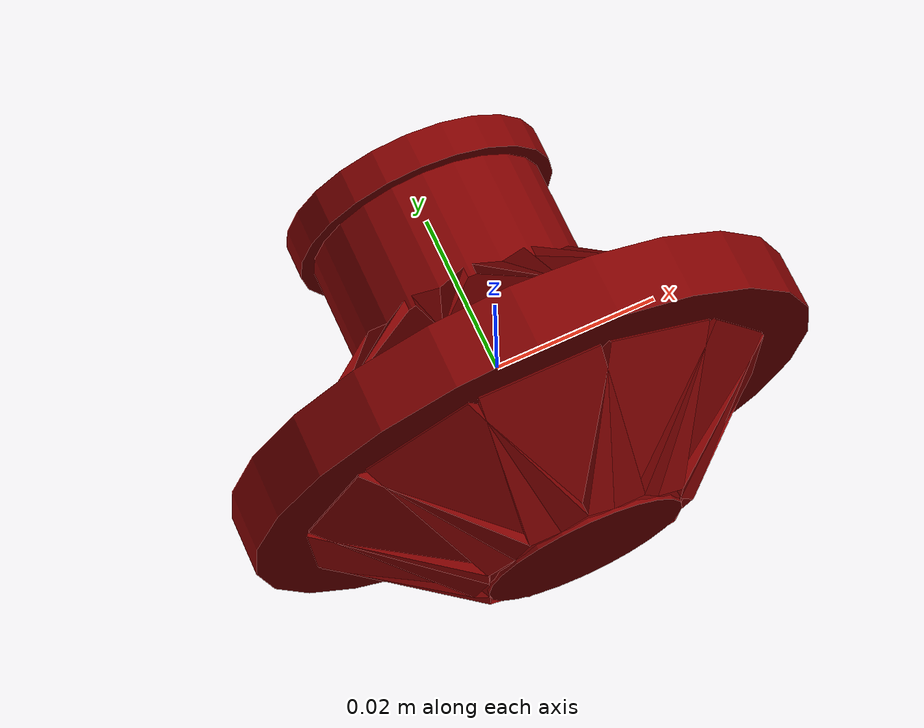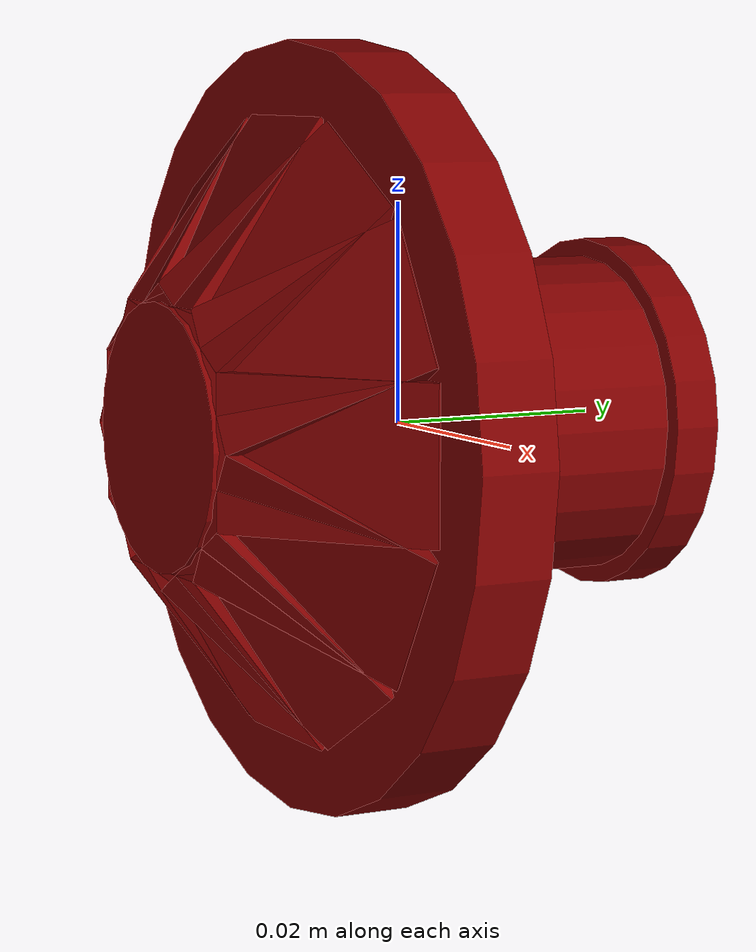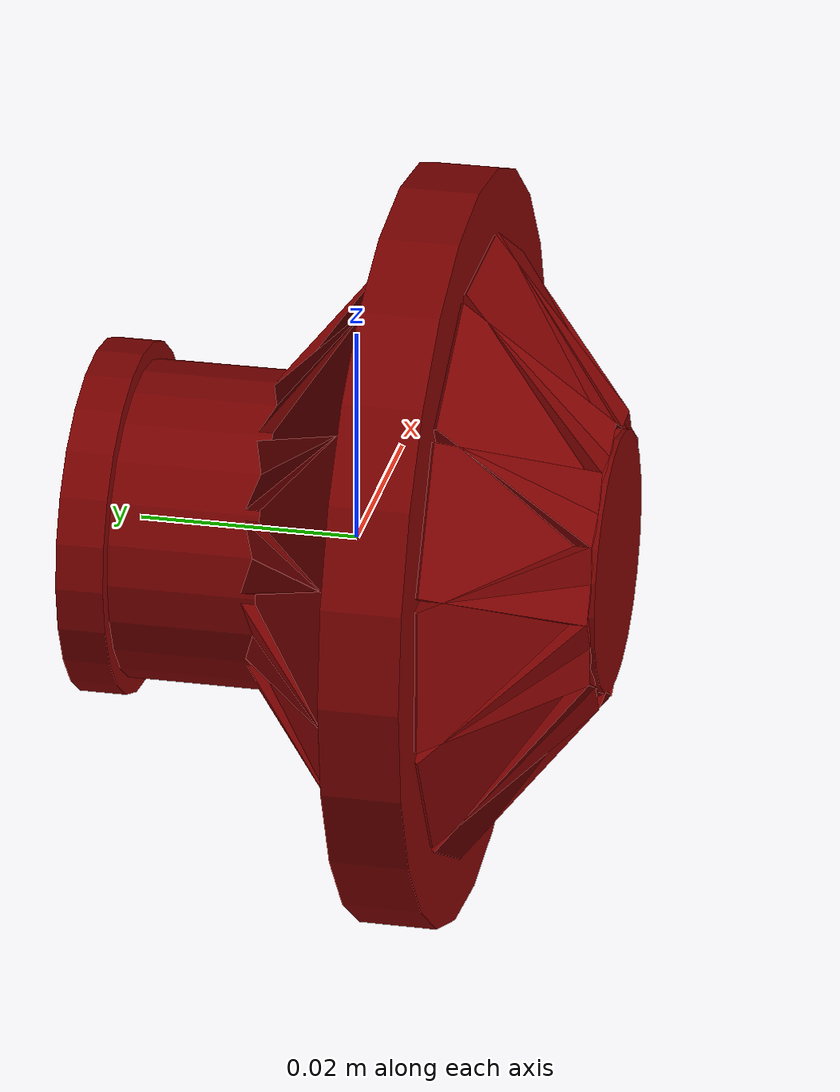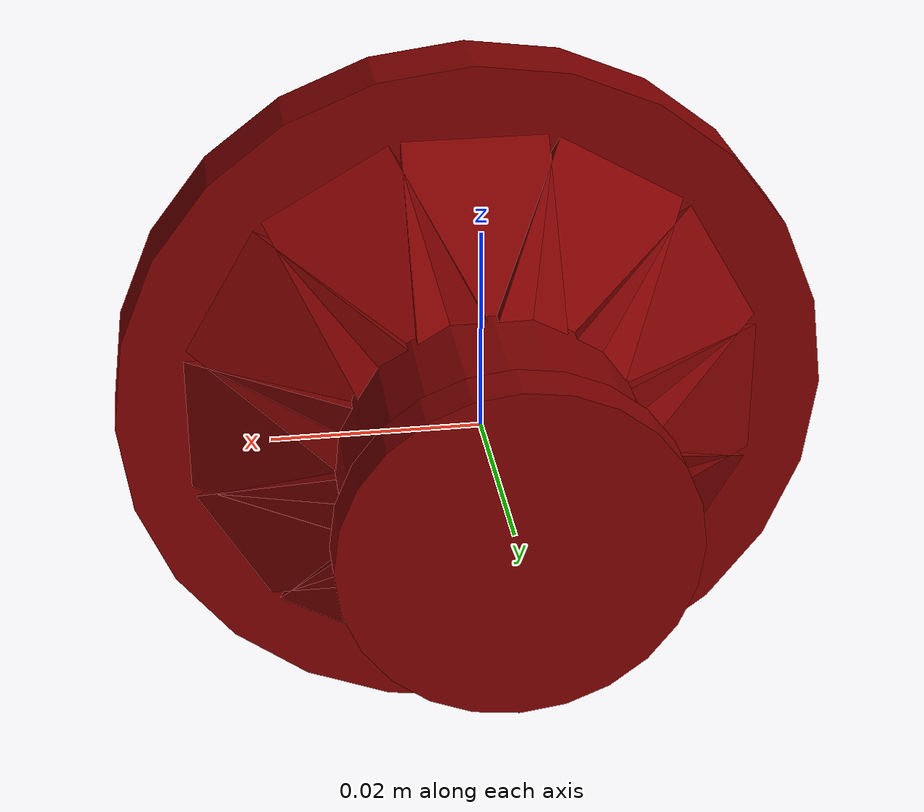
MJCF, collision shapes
<?xml version='1.0' encoding='UTF-8'?>
<mujoco model="model">
  <option timestep="0.002" gravity="0.0 0.0 -9.81"/>
  <compiler angle="radian"/>
  <asset>
    <mesh file="visuals/CabinetHandle035.obj" name="CabinetHandle035_vis"/>
    <texture file="visuals/T_BC001.png" name="tex" type="2d"/>
    <material name="mat" rgba="1 1 1 1.0" texture="tex" shininess="0.4472135901451111" specular="0.3103448502657381"/>
  </asset>
  <default>
    <default class="visual">
      <geom conaffinity="0" contype="0" group="1" type="mesh"/>
    </default>
    <default class="collision">
      <geom group="0" rgba="0.5 0 0 0.5" density="1.0" solref="0.004 1" solimp="0.998 0.998 0.001"/>
    </default>
    <default class="spawn">
      <geom group="0" rgba="1 1 1 0.5" contype="0" conaffinity="0"/>
      <site group="0" rgba="1 1 1 0.5"/>
    </default>
    <default class="region">
      <geom group="1" conaffinity="0" contype="0" rgba="0 1 0 0" mass="0"/>
    </default>
  </default>
  <worldbody>
    <body>
      <body name="object">
        <geom mesh="CabinetHandle035_vis" type="mesh" solimp="0.998 0.998 0.001" solref="0.001 1" friction="0.95 0.3 0.1" class="visual" material="mat"/>
        <geom type="cylinder" pos="0.0 -0.007462132256478071 5.633752908629219e-10" size="0.03455479070544243 0.003561858320608735" quat="0.7071068286895752 0.7071067690849304 0.0 0.0" class="collision"/>
        <geom type="cylinder" pos="0.0 0.021816875785589218 -1.6471284336461167e-09" size="0.016213493421673775 0.002159304916858673" quat="0.7071068286895752 0.7071067690849304 0.0 0.0" class="collision"/>
        <geom type="cylinder" pos="0.0 -0.020998649299144745 1.323114950935178e-09" size="0.011950517073273659 0.002989482833072543" quat="0.7071068286895752 0.7071067690849304 0.0 0.0" class="collision"/>
        <geom type="cylinder" pos="0.0 0.012328596785664558 -9.307831172478132e-10" size="0.01458699069917202 0.007982098497450352" quat="0.7071068286895752 0.7071067690849304 0.0 0.0" class="collision"/>
        <geom type="box" pos="0.0 0.00020826468244194984 0.018328353762626648" size="0.006832967046648264 0.010165456682443619 0.002418133895844221" quat="0.8962873816490173 -0.4434736669063568 -0.0 0.0" class="collision"/>
        <geom type="box" pos="-2.7675044478314703e-09 0.00020826468244194984 -0.018328353762626648" size="0.006832967046648264 0.010165456682443619 0.002418133895844221" quat="6.766781268652267e-08 -3.348133503777717e-08 -0.8962873816490173 -0.4434736967086792" class="collision"/>
        <geom type="box" pos="0.018328353762626648 0.00020826468244194984 8.958203068232251e-09" size="0.006832967046648264 0.010165456682443619 0.002418133895844221" quat="0.6337710618972778 -0.3135833144187927 0.633770763874054 0.3135831654071808" class="collision"/>
        <geom type="box" pos="-0.018328353762626648 0.00020826468244194984 1.3837522239157352e-09" size="0.006832967046648264 0.010165456682443619 0.002418133895844221" quat="0.6337709426879883 -0.31358325481414795 -0.6337708830833435 -0.31358322501182556" class="collision"/>
        <geom type="box" pos="-0.01587281934916973 0.00020826654508709908 0.009164177812635899" size="0.006832967046648264 0.010165457613766193 0.002418133895844221" quat="0.776207685470581 -0.38405951857566833 -0.4481436610221863 -0.2217368483543396" class="collision"/>
        <geom type="box" pos="0.01587282493710518 0.00020826654508709908 -0.009164167568087578" size="0.006832967046648264 0.010165456682443619 0.002418133895844221" quat="0.44814395904541016 -0.22173696756362915 0.7762075066566467 0.38405942916870117" class="collision"/>
        <geom type="box" pos="0.00916418805718422 0.00020826654508709908 -0.015872813761234283" size="0.006832967046648264 0.010165456682443619 0.002418133895844221" quat="0.2319764792919159 -0.1147795245051384 0.8657470941543579 0.42836257815361023" class="collision"/>
        <geom type="box" pos="-0.009164176881313324 0.00020826654508709908 0.01587281934916973" size="0.006832967046648264 0.010165456682443619 0.002418133895844221" quat="0.8657471537590027 -0.4283626973628998 -0.2319762259721756 -0.11477942764759064" class="collision"/>
        <geom type="box" pos="0.009164177812635899 0.00020826654508709908 0.01587281934916973" size="0.006832967046648264 0.010165456682443619 0.002418133895844221" quat="0.8657470941543579 -0.42836275696754456 0.23197630047798157 0.11477947980165482" class="collision"/>
        <geom type="box" pos="-0.009164165705442429 0.00020826654508709908 -0.01587282493710518" size="0.006832967046648264 0.010165456682443619 0.002418133895844221" quat="0.2319759577512741 -0.11477930098772049 -0.8657472133636475 -0.42836275696754456" class="collision"/>
        <geom type="box" pos="-0.015872813761234283 0.00020826654508709908 -0.009164188988506794" size="0.006832967046648264 0.010165456682443619 0.002418133895844221" quat="0.4481433629989624 -0.22173655033111572 -0.7762079834938049 -0.38405942916870117" class="collision"/>
        <geom type="box" pos="0.01587282121181488 0.00020826654508709908 0.009164175018668175" size="0.006832967046648264 0.010165456682443619 0.002418133895844221" quat="0.7762076258659363 -0.38405951857566833 0.44814375042915344 0.22173690795898438" class="collision"/>
        <geom type="box" pos="0.0 -0.015531191602349281 0.018328353762626648" size="0.006832967046648264 0.010165455751121044 0.002418133895844221" quat="0.8962873816490173 0.4434737265110016 0.0 0.0" class="collision"/>
        <geom type="box" pos="-2.7675044478314703e-09 -0.015531191602349281 -0.018328353762626648" size="0.006832967046648264 0.010165456682443619 0.002418133895844221" quat="6.766781268652267e-08 3.348133148506349e-08 -0.8962873816490173 0.4434736967086792" class="collision"/>
        <geom type="box" pos="0.018328353762626648 -0.015531191602349281 8.958203068232251e-09" size="0.006832967046648264 0.010165456682443619 0.002418133895844221" quat="0.6337710022926331 0.3135833144187927 0.633770763874054 -0.3135831952095032" class="collision"/>
        <geom type="box" pos="-0.018328353762626648 -0.015531191602349281 1.3837522239157352e-09" size="0.006832967046648264 0.010165456682443619 0.002418133895844221" quat="0.6337708830833435 0.31358328461647034 -0.6337708830833435 0.31358325481414795" class="collision"/>
        <geom type="box" pos="-0.01587281934916973 -0.01553119346499443 0.009164177812635899" size="0.006832967046648264 0.010165456682443619 0.002418133895844221" quat="0.776207685470581 0.38405948877334595 -0.4481436610221863 0.2217368185520172" class="collision"/>
        <geom type="box" pos="0.01587282493710518 -0.01553119346499443 -0.009164167568087578" size="0.006832967046648264 0.010165456682443619 0.002418133895844221" quat="0.44814392924308777 0.22173699736595154 0.776207447052002 -0.38405945897102356" class="collision"/>
        <geom type="box" pos="0.00916418805718422 -0.01553119346499443 -0.015872813761234283" size="0.006832967046648264 0.010165456682443619 0.002418133895844221" quat="0.2319764643907547 0.11477956920862198 0.8657470941543579 -0.42836257815361023" class="collision"/>
        <geom type="box" pos="-0.009164176881313324 -0.01553119346499443 0.01587281934916973" size="0.006832967046648264 0.010165456682443619 0.002418133895844221" quat="0.8657471537590027 0.4283626973628998 -0.2319761961698532 0.11477942019701004" class="collision"/>
        <geom type="box" pos="0.009164177812635899 -0.01553119346499443 0.01587281934916973" size="0.006832967046648264 0.010165456682443619 0.002418133895844221" quat="0.8657470941543579 0.42836272716522217 0.23197628557682037 -0.11477944254875183" class="collision"/>
        <geom type="box" pos="-0.009164165705442429 -0.01553119346499443 -0.01587282493710518" size="0.006832967046648264 0.010165456682443619 0.002418133895844221" quat="0.2319759577512741 0.1147792860865593 -0.8657472133636475 0.42836275696754456" class="collision"/>
        <geom type="box" pos="-0.015872813761234283 -0.01553119346499443 -0.009164188988506794" size="0.006832967046648264 0.010165456682443619 0.002418133895844221" quat="0.4481433629989624 0.22173653542995453 -0.7762079834938049 0.38405942916870117" class="collision"/>
        <geom type="box" pos="0.01587282121181488 -0.01553119346499443 0.009164175018668175" size="0.006832967046648264 0.010165456682443619 0.002418133895844221" quat="0.7762076258659363 0.38405945897102356 0.44814378023147583 -0.2217368334531784" class="collision"/>
        <geom class="region" name="reg_main" type="box" pos="0.0 0.0 0.0" size="0.035255251288414 0.0248504558801651 0.0352552550137043"/>
      </body>
    </body>
  </worldbody>
  <actuator/>
</mujoco>
